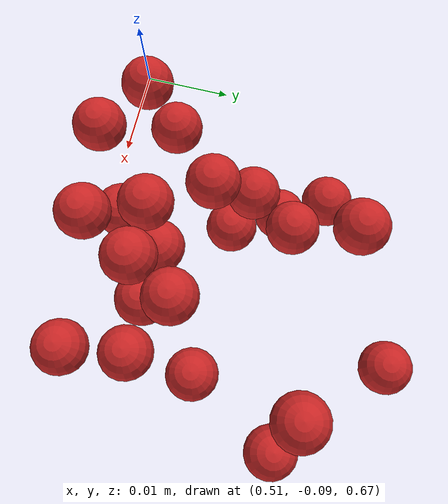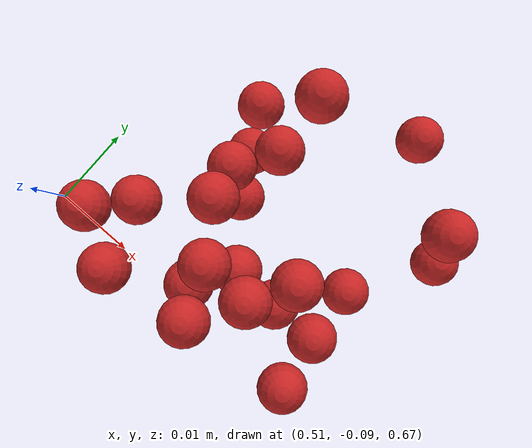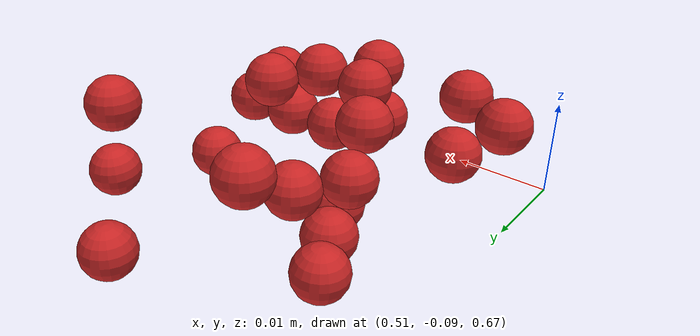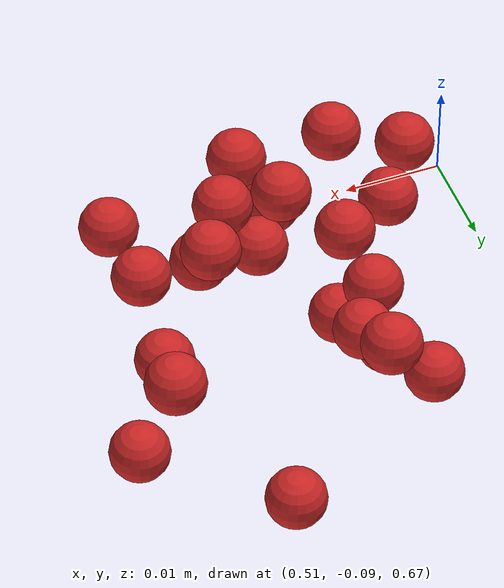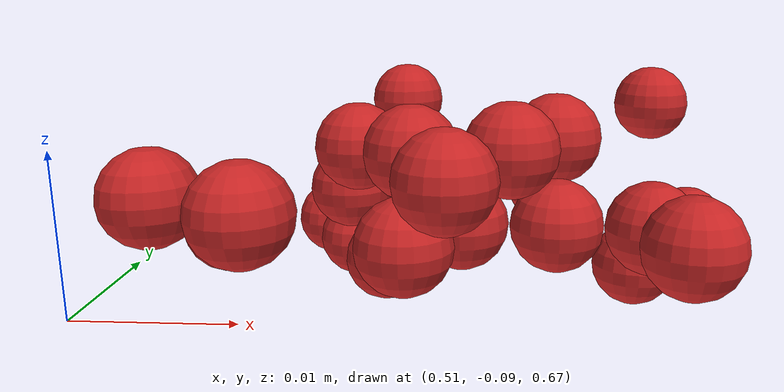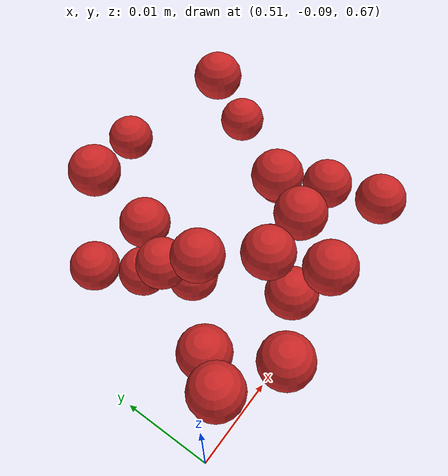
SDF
<sdf version="1.4">
 <world name="default">
  <model name="ground_plane">
   <static>1</static>
   <link name="link">
    <collision name="collision">
     <geometry><plane><normal>0 0 1</normal><size>100 100</size></plane></geometry>
     <surface><friction><ode><mu>100</mu><mu2>50</mu2></ode></friction></surface>
    </collision>
    <visual name="visual">
     <cast_shadows>0</cast_shadows>
     <geometry><plane><normal>0 0 1</normal><size>100 100</size></plane></geometry>
     <material>
      <script><uri>file://media/materials/scripts/gazebo.material</uri><name>Gazebo/Grey</name></script>
     </material>
    </visual>
    <velocity_decay><linear>0</linear><angular>0</angular></velocity_decay>
   </link>
  </model>
  <model name="sphere8">
   <pose>-0.011995 -0.038046 -0.064945 0.000812 -0.003027 0.000215</pose>
   <link name="link">
    <pose>0.54076 -0.036781 0.732288 0 -0 0</pose>
    <inertial>
     <mass>0.0000001</mass>
     <inertia><ixx>0.00004</ixx><ixy>0</ixy><ixz>0</ixz><iyy>0.00004</iyy><iyz>0</iyz><izz>0.00004</izz></inertia>
    </inertial>
    <collision name="collision">
     <surface>
      <contact><ode><kp>1e+10</kp><kd>1</kd></ode></contact>
      <friction><ode><mu>0.01</mu><mu2>0.01</mu2></ode></friction>
     </surface>
     <geometry><sphere><radius>0.003</radius></sphere></geometry>
    </collision>
    <visual name="visual">
     <geometry><sphere><radius>0.003</radius></sphere></geometry>
     <material>
      <script><uri>file://media/materials/scripts/gazebo.material</uri><name>Gazebo/Red</name></script>
     </material>
    </visual>
    <velocity_decay><linear>0</linear><angular>0</angular></velocity_decay>
   </link>
   <static>0</static>
  </model>
  <model name="sphere15">
   <pose>-0.014854 -0.034476 -0.067614 -0.013995 -0.006976 0.000594</pose>
   <link name="link">
    <pose>0.55876 -0.030781 0.732288 0 -0 0</pose>
    <inertial>
     <mass>0.0000001</mass>
     <inertia><ixx>0.00004</ixx><ixy>0</ixy><ixz>0</ixz><iyy>0.00004</iyy><iyz>0</iyz><izz>0.00004</izz></inertia>
    </inertial>
    <collision name="collision">
     <surface>
      <contact><ode><kp>1e+10</kp><kd>1</kd></ode></contact>
      <friction><ode><mu>0.01</mu><mu2>0.01</mu2></ode></friction>
     </surface>
     <geometry><sphere><radius>0.003</radius></sphere></geometry>
    </collision>
    <visual name="visual">
     <geometry><sphere><radius>0.003</radius></sphere></geometry>
     <material>
      <script><uri>file://media/materials/scripts/gazebo.material</uri><name>Gazebo/Red</name></script>
     </material>
    </visual>
    <velocity_decay><linear>0</linear><angular>0</angular></velocity_decay>
   </link>
   <static>0</static>
  </model>
  <model name="sphere19">
   <pose>-0.010585 -0.046733 -0.065967 -0.013053 -0.003186 -0.005735</pose>
   <link name="link">
    <pose>0.55876 -0.048781 0.738288 0 -0 0</pose>
    <inertial>
     <mass>0.0000001</mass>
     <inertia><ixx>0.00004</ixx><ixy>0</ixy><ixz>0</ixz><iyy>0.00004</iyy><iyz>0</iyz><izz>0.00004</izz></inertia>
    </inertial>
    <collision name="collision">
     <surface>
      <contact><ode><kp>1e+10</kp><kd>1</kd></ode></contact>
      <friction><ode><mu>0.01</mu><mu2>0.01</mu2></ode></friction>
     </surface>
     <geometry><sphere><radius>0.003</radius></sphere></geometry>
    </collision>
    <visual name="visual">
     <geometry><sphere><radius>0.003</radius></sphere></geometry>
     <material>
      <script><uri>file://media/materials/scripts/gazebo.material</uri><name>Gazebo/Red</name></script>
     </material>
    </visual>
    <velocity_decay><linear>0</linear><angular>0</angular></velocity_decay>
   </link>
   <static>0</static>
  </model>
  <model name="sphere42">
   <pose>-0.015761 -0.041156 -0.064336 0.000626 0.002089 -0.000679</pose>
   <link name="link">
    <pose>0.55276 -0.036781 0.744288 0 -0 0</pose>
    <inertial>
     <mass>0.0000001</mass>
     <inertia><ixx>0.00004</ixx><ixy>0</ixy><ixz>0</ixz><iyy>0.00004</iyy><iyz>0</iyz><izz>0.00004</izz></inertia>
    </inertial>
    <collision name="collision">
     <surface>
      <contact><ode><kp>1e+10</kp><kd>1</kd></ode></contact>
      <friction><ode><mu>0.01</mu><mu2>0.01</mu2></ode></friction>
     </surface>
     <geometry><sphere><radius>0.003</radius></sphere></geometry>
    </collision>
    <visual name="visual">
     <geometry><sphere><radius>0.003</radius></sphere></geometry>
     <material>
      <script><uri>file://media/materials/scripts/gazebo.material</uri><name>Gazebo/Red</name></script>
     </material>
    </visual>
    <velocity_decay><linear>0</linear><angular>0</angular></velocity_decay>
   </link>
   <static>0</static>
  </model>
  <model name="sphere47">
   <pose>-0.012548 -0.03429 -0.064661 -0.001338 0.001501 0.000788</pose>
   <link name="link">
    <pose>0.55876 -0.030781 0.744288 0 -0 0</pose>
    <inertial>
     <mass>0.0000001</mass>
     <inertia><ixx>0.00004</ixx><ixy>0</ixy><ixz>0</ixz><iyy>0.00004</iyy><iyz>0</iyz><izz>0.00004</izz></inertia>
    </inertial>
    <collision name="collision">
     <surface>
      <contact><ode><kp>1e+10</kp><kd>1</kd></ode></contact>
      <friction><ode><mu>0.01</mu><mu2>0.01</mu2></ode></friction>
     </surface>
     <geometry><sphere><radius>0.003</radius></sphere></geometry>
    </collision>
    <visual name="visual">
     <geometry><sphere><radius>0.003</radius></sphere></geometry>
     <material>
      <script><uri>file://media/materials/scripts/gazebo.material</uri><name>Gazebo/Red</name></script>
     </material>
    </visual>
    <velocity_decay><linear>0</linear><angular>0</angular></velocity_decay>
   </link>
   <static>0</static>
  </model>
  <model name="sphere49">
   <pose>-0.015658 -0.040966 -0.07213 -0.021245 0.018212 -0.00307</pose>
   <link name="link">
    <pose>0.54676 -0.048781 0.750288 0 -0 0</pose>
    <inertial>
     <mass>0.0000001</mass>
     <inertia><ixx>0.00004</ixx><ixy>0</ixy><ixz>0</ixz><iyy>0.00004</iyy><iyz>0</iyz><izz>0.00004</izz></inertia>
    </inertial>
    <collision name="collision">
     <surface>
      <contact><ode><kp>1e+10</kp><kd>1</kd></ode></contact>
      <friction><ode><mu>0.01</mu><mu2>0.01</mu2></ode></friction>
     </surface>
     <geometry><sphere><radius>0.003</radius></sphere></geometry>
    </collision>
    <visual name="visual">
     <geometry><sphere><radius>0.003</radius></sphere></geometry>
     <material>
      <script><uri>file://media/materials/scripts/gazebo.material</uri><name>Gazebo/Red</name></script>
     </material>
    </visual>
    <velocity_decay><linear>0</linear><angular>0</angular></velocity_decay>
   </link>
   <static>0</static>
  </model>
  <model name="sphere62">
   <pose>-0.017995 -0.034349 -0.091556 0.000148 -0.018681 0.000735</pose>
   <link name="link">
    <pose>0.55276 -0.030781 0.750288 0 -0 0</pose>
    <inertial>
     <mass>0.0000001</mass>
     <inertia><ixx>0.00004</ixx><ixy>0</ixy><ixz>0</ixz><iyy>0.00004</iyy><iyz>0</iyz><izz>0.00004</izz></inertia>
    </inertial>
    <collision name="collision">
     <surface>
      <contact><ode><kp>1e+10</kp><kd>1</kd></ode></contact>
      <friction><ode><mu>0.01</mu><mu2>0.01</mu2></ode></friction>
     </surface>
     <geometry><sphere><radius>0.003</radius></sphere></geometry>
    </collision>
    <visual name="visual">
     <geometry><sphere><radius>0.003</radius></sphere></geometry>
     <material>
      <script><uri>file://media/materials/scripts/gazebo.material</uri><name>Gazebo/Red</name></script>
     </material>
    </visual>
    <velocity_decay><linear>0</linear><angular>0</angular></velocity_decay>
   </link>
   <static>0</static>
  </model>
  <model name="sphere70">
   <pose>-0.010068 -0.037963 -0.081143 0.003171 0.002287 0.001258</pose>
   <link name="link">
    <pose>0.55276 -0.042781 0.756288 0 -0 0</pose>
    <inertial>
     <mass>0.0000001</mass>
     <inertia><ixx>0.00004</ixx><ixy>0</ixy><ixz>0</ixz><iyy>0.00004</iyy><iyz>0</iyz><izz>0.00004</izz></inertia>
    </inertial>
    <collision name="collision">
     <surface>
      <contact><ode><kp>1e+10</kp><kd>1</kd></ode></contact>
      <friction><ode><mu>0.01</mu><mu2>0.01</mu2></ode></friction>
     </surface>
     <geometry><sphere><radius>0.003</radius></sphere></geometry>
    </collision>
    <visual name="visual">
     <geometry><sphere><radius>0.003</radius></sphere></geometry>
     <material>
      <script><uri>file://media/materials/scripts/gazebo.material</uri><name>Gazebo/Red</name></script>
     </material>
    </visual>
    <velocity_decay><linear>0</linear><angular>0</angular></velocity_decay>
   </link>
   <static>0</static>
  </model>
  <model name="sphere81">
   <pose>-0.010707 -0.034104 -0.083601 0.000765 -0.000693 -0.000831</pose>
   <link name="link">
    <pose>0.54676 -0.048781 0.762288 0 -0 0</pose>
    <inertial>
     <mass>0.0000001</mass>
     <inertia><ixx>0.00004</ixx><ixy>0</ixy><ixz>0</ixz><iyy>0.00004</iyy><iyz>0</iyz><izz>0.00004</izz></inertia>
    </inertial>
    <collision name="collision">
     <surface>
      <contact><ode><kp>1e+10</kp><kd>1</kd></ode></contact>
      <friction><ode><mu>0.01</mu><mu2>0.01</mu2></ode></friction>
     </surface>
     <geometry><sphere><radius>0.003</radius></sphere></geometry>
    </collision>
    <visual name="visual">
     <geometry><sphere><radius>0.003</radius></sphere></geometry>
     <material>
      <script><uri>file://media/materials/scripts/gazebo.material</uri><name>Gazebo/Red</name></script>
     </material>
    </visual>
    <velocity_decay><linear>0</linear><angular>0</angular></velocity_decay>
   </link>
   <static>0</static>
  </model>
  <model name="sphere100">
   <pose>-0.017657 -0.031811 -0.099242 -0.003519 0.000511 0.003353</pose>
   <link name="link">
    <pose>0.54076 -0.042781 0.768288 0 -0 0</pose>
    <inertial>
     <mass>0.0000001</mass>
     <inertia><ixx>0.00004</ixx><ixy>0</ixy><ixz>0</ixz><iyy>0.00004</iyy><iyz>0</iyz><izz>0.00004</izz></inertia>
    </inertial>
    <collision name="collision">
     <surface>
      <contact><ode><kp>1e+10</kp><kd>1</kd></ode></contact>
      <friction><ode><mu>0.01</mu><mu2>0.01</mu2></ode></friction>
     </surface>
     <geometry><sphere><radius>0.003</radius></sphere></geometry>
    </collision>
    <visual name="visual">
     <geometry><sphere><radius>0.003</radius></sphere></geometry>
     <material>
      <script><uri>file://media/materials/scripts/gazebo.material</uri><name>Gazebo/Red</name></script>
     </material>
    </visual>
    <velocity_decay><linear>0</linear><angular>0</angular></velocity_decay>
   </link>
   <static>0</static>
  </model>
  <model name="sphere112">
   <pose>-0.012681 -0.039969 -0.107378 -0.007505 -0.01285 -0.00189</pose>
   <link name="link">
    <pose>0.54076 -0.048781 0.774288 0 -0 0</pose>
    <inertial>
     <mass>0.0000001</mass>
     <inertia><ixx>0.00004</ixx><ixy>0</ixy><ixz>0</ixz><iyy>0.00004</iyy><iyz>0</iyz><izz>0.00004</izz></inertia>
    </inertial>
    <collision name="collision">
     <surface>
      <contact><ode><kp>1e+10</kp><kd>1</kd></ode></contact>
      <friction><ode><mu>0.01</mu><mu2>0.01</mu2></ode></friction>
     </surface>
     <geometry><sphere><radius>0.003</radius></sphere></geometry>
    </collision>
    <visual name="visual">
     <geometry><sphere><radius>0.003</radius></sphere></geometry>
     <material>
      <script><uri>file://media/materials/scripts/gazebo.material</uri><name>Gazebo/Red</name></script>
     </material>
    </visual>
    <velocity_decay><linear>0</linear><angular>0</angular></velocity_decay>
   </link>
   <static>0</static>
  </model>
  <model name="sphere129">
   <pose>-0.01705 -0.037641 -0.106672 0.000768 -0.000592 -0.000549</pose>
   <link name="link">
    <pose>0.54676 -0.048781 0.780288 0 -0 0</pose>
    <inertial>
     <mass>0.0000001</mass>
     <inertia><ixx>0.00004</ixx><ixy>0</ixy><ixz>0</ixz><iyy>0.00004</iyy><iyz>0</iyz><izz>0.00004</izz></inertia>
    </inertial>
    <collision name="collision">
     <surface>
      <contact><ode><kp>1e+10</kp><kd>1</kd></ode></contact>
      <friction><ode><mu>0.01</mu><mu2>0.01</mu2></ode></friction>
     </surface>
     <geometry><sphere><radius>0.003</radius></sphere></geometry>
    </collision>
    <visual name="visual">
     <geometry><sphere><radius>0.003</radius></sphere></geometry>
     <material>
      <script><uri>file://media/materials/scripts/gazebo.material</uri><name>Gazebo/Red</name></script>
     </material>
    </visual>
    <velocity_decay><linear>0</linear><angular>0</angular></velocity_decay>
   </link>
   <static>0</static>
  </model>
  <model name="sphere135">
   <pose>-0.012944 -0.077597 -0.10897 -0.069233 0.00623 0.00201</pose>
   <link name="link">
    <pose>0.55876 -0.042781 0.780288 0 -0 0</pose>
    <inertial>
     <mass>0.0000001</mass>
     <inertia><ixx>0.00004</ixx><ixy>0</ixy><ixz>0</ixz><iyy>0.00004</iyy><iyz>0</iyz><izz>0.00004</izz></inertia>
    </inertial>
    <collision name="collision">
     <surface>
      <contact><ode><kp>1e+10</kp><kd>1</kd></ode></contact>
      <friction><ode><mu>0.01</mu><mu2>0.01</mu2></ode></friction>
     </surface>
     <geometry><sphere><radius>0.003</radius></sphere></geometry>
    </collision>
    <visual name="visual">
     <geometry><sphere><radius>0.003</radius></sphere></geometry>
     <material>
      <script><uri>file://media/materials/scripts/gazebo.material</uri><name>Gazebo/Red</name></script>
     </material>
    </visual>
    <velocity_decay><linear>0</linear><angular>0</angular></velocity_decay>
   </link>
   <static>0</static>
  </model>
  <model name="sphere136">
   <pose>-0.012955 -0.032014 -0.107087 -0.0018 -0.001194 -0.001629</pose>
   <link name="link">
    <pose>0.54076 -0.036781 0.780288 0 -0 0</pose>
    <inertial>
     <mass>0.0000001</mass>
     <inertia><ixx>0.00004</ixx><ixy>0</ixy><ixz>0</ixz><iyy>0.00004</iyy><iyz>0</iyz><izz>0.00004</izz></inertia>
    </inertial>
    <collision name="collision">
     <surface>
      <contact><ode><kp>1e+10</kp><kd>1</kd></ode></contact>
      <friction><ode><mu>0.01</mu><mu2>0.01</mu2></ode></friction>
     </surface>
     <geometry><sphere><radius>0.003</radius></sphere></geometry>
    </collision>
    <visual name="visual">
     <geometry><sphere><radius>0.003</radius></sphere></geometry>
     <material>
      <script><uri>file://media/materials/scripts/gazebo.material</uri><name>Gazebo/Red</name></script>
     </material>
    </visual>
    <velocity_decay><linear>0</linear><angular>0</angular></velocity_decay>
   </link>
   <static>0</static>
  </model>
  <model name="sphere149">
   <pose>-0.013646 -0.039378 -0.11291 9.5e-05 -0.000896 -4.4e-05</pose>
   <link name="link">
    <pose>0.54676 -0.042781 0.786288 0 -0 0</pose>
    <inertial>
     <mass>0.0000001</mass>
     <inertia><ixx>0.00004</ixx><ixy>0</ixy><ixz>0</ixz><iyy>0.00004</iyy><iyz>0</iyz><izz>0.00004</izz></inertia>
    </inertial>
    <collision name="collision">
     <surface>
      <contact><ode><kp>1e+10</kp><kd>1</kd></ode></contact>
      <friction><ode><mu>0.01</mu><mu2>0.01</mu2></ode></friction>
     </surface>
     <geometry><sphere><radius>0.003</radius></sphere></geometry>
    </collision>
    <visual name="visual">
     <geometry><sphere><radius>0.003</radius></sphere></geometry>
     <material>
      <script><uri>file://media/materials/scripts/gazebo.material</uri><name>Gazebo/Red</name></script>
     </material>
    </visual>
    <velocity_decay><linear>0</linear><angular>0</angular></velocity_decay>
   </link>
   <static>0</static>
  </model>
  <model name="sphere150">
   <pose>-0.015208 -0.038606 -0.111768 0.00149 0.001133 0.000324</pose>
   <link name="link">
    <pose>0.55276 -0.042781 0.786288 0 -0 0</pose>
    <inertial>
     <mass>0.0000001</mass>
     <inertia><ixx>0.00004</ixx><ixy>0</ixy><ixz>0</ixz><iyy>0.00004</iyy><iyz>0</iyz><izz>0.00004</izz></inertia>
    </inertial>
    <collision name="collision">
     <surface>
      <contact><ode><kp>1e+10</kp><kd>1</kd></ode></contact>
      <friction><ode><mu>0.01</mu><mu2>0.01</mu2></ode></friction>
     </surface>
     <geometry><sphere><radius>0.003</radius></sphere></geometry>
    </collision>
    <visual name="visual">
     <geometry><sphere><radius>0.003</radius></sphere></geometry>
     <material>
      <script><uri>file://media/materials/scripts/gazebo.material</uri><name>Gazebo/Red</name></script>
     </material>
    </visual>
    <velocity_decay><linear>0</linear><angular>0</angular></velocity_decay>
   </link>
   <static>0</static>
  </model>
  <model name="sphere152">
   <pose>-0.016783 -0.040512 -0.107608 0.001191 0.00139 0.000978</pose>
   <link name="link">
    <pose>0.54076 -0.036781 0.786288 0 -0 0</pose>
    <inertial>
     <mass>0.0000001</mass>
     <inertia><ixx>0.00004</ixx><ixy>0</ixy><ixz>0</ixz><iyy>0.00004</iyy><iyz>0</iyz><izz>0.00004</izz></inertia>
    </inertial>
    <collision name="collision">
     <surface>
      <contact><ode><kp>1e+10</kp><kd>1</kd></ode></contact>
      <friction><ode><mu>0.01</mu><mu2>0.01</mu2></ode></friction>
     </surface>
     <geometry><sphere><radius>0.003</radius></sphere></geometry>
    </collision>
    <visual name="visual">
     <geometry><sphere><radius>0.003</radius></sphere></geometry>
     <material>
      <script><uri>file://media/materials/scripts/gazebo.material</uri><name>Gazebo/Red</name></script>
     </material>
    </visual>
    <velocity_decay><linear>0</linear><angular>0</angular></velocity_decay>
   </link>
   <static>0</static>
  </model>
  <model name="sphere156">
   <pose>-0.012349 -0.033071 -0.108798 -0.002318 -0.00215 0.001089</pose>
   <link name="link">
    <pose>0.54076 -0.030781 0.786288 0 -0 0</pose>
    <inertial>
     <mass>0.0000001</mass>
     <inertia><ixx>0.00004</ixx><ixy>0</ixy><ixz>0</ixz><iyy>0.00004</iyy><iyz>0</iyz><izz>0.00004</izz></inertia>
    </inertial>
    <collision name="collision">
     <surface>
      <contact><ode><kp>1e+10</kp><kd>1</kd></ode></contact>
      <friction><ode><mu>0.01</mu><mu2>0.01</mu2></ode></friction>
     </surface>
     <geometry><sphere><radius>0.003</radius></sphere></geometry>
    </collision>
    <visual name="visual">
     <geometry><sphere><radius>0.003</radius></sphere></geometry>
     <material>
      <script><uri>file://media/materials/scripts/gazebo.material</uri><name>Gazebo/Red</name></script>
     </material>
    </visual>
    <velocity_decay><linear>0</linear><angular>0</angular></velocity_decay>
   </link>
   <static>0</static>
  </model>
  <model name="sphere160">
   <pose>-0.011547 -0.033935 -0.113289 0.002362 0.00015 0.001341</pose>
   <link name="link">
    <pose>0.54076 -0.048781 0.792288 0 -0 0</pose>
    <inertial>
     <mass>0.0000001</mass>
     <inertia><ixx>0.00004</ixx><ixy>0</ixy><ixz>0</ixz><iyy>0.00004</iyy><iyz>0</iyz><izz>0.00004</izz></inertia>
    </inertial>
    <collision name="collision">
     <surface>
      <contact><ode><kp>1e+10</kp><kd>1</kd></ode></contact>
      <friction><ode><mu>0.01</mu><mu2>0.01</mu2></ode></friction>
     </surface>
     <geometry><sphere><radius>0.003</radius></sphere></geometry>
    </collision>
    <visual name="visual">
     <geometry><sphere><radius>0.003</radius></sphere></geometry>
     <material>
      <script><uri>file://media/materials/scripts/gazebo.material</uri><name>Gazebo/Red</name></script>
     </material>
    </visual>
    <velocity_decay><linear>0</linear><angular>0</angular></velocity_decay>
   </link>
   <static>0</static>
  </model>
  <model name="sphere176">
   <pose>-0.012317 -0.056123 -0.131426 -0.02811 -0.016787 -0.010682</pose>
   <link name="link">
    <pose>0.54076 -0.048781 0.798288 0 -0 0</pose>
    <inertial>
     <mass>0.0000001</mass>
     <inertia><ixx>0.00004</ixx><ixy>0</ixy><ixz>0</ixz><iyy>0.00004</iyy><iyz>0</iyz><izz>0.00004</izz></inertia>
    </inertial>
    <collision name="collision">
     <surface>
      <contact><ode><kp>1e+10</kp><kd>1</kd></ode></contact>
      <friction><ode><mu>0.01</mu><mu2>0.01</mu2></ode></friction>
     </surface>
     <geometry><sphere><radius>0.003</radius></sphere></geometry>
    </collision>
    <visual name="visual">
     <geometry><sphere><radius>0.003</radius></sphere></geometry>
     <material>
      <script><uri>file://media/materials/scripts/gazebo.material</uri><name>Gazebo/Red</name></script>
     </material>
    </visual>
    <velocity_decay><linear>0</linear><angular>0</angular></velocity_decay>
   </link>
   <static>0</static>
  </model>
  <model name="sphere184">
   <pose>-0.016825 -0.038104 -0.124573 -0.001199 -0.000273 0.00093</pose>
   <link name="link">
    <pose>0.54076 -0.036781 0.798288 0 -0 0</pose>
    <inertial>
     <mass>0.0000001</mass>
     <inertia><ixx>0.00004</ixx><ixy>0</ixy><ixz>0</ixz><iyy>0.00004</iyy><iyz>0</iyz><izz>0.00004</izz></inertia>
    </inertial>
    <collision name="collision">
     <surface>
      <contact><ode><kp>1e+10</kp><kd>1</kd></ode></contact>
      <friction><ode><mu>0.01</mu><mu2>0.01</mu2></ode></friction>
     </surface>
     <geometry><sphere><radius>0.003</radius></sphere></geometry>
    </collision>
    <visual name="visual">
     <geometry><sphere><radius>0.003</radius></sphere></geometry>
     <material>
      <script><uri>file://media/materials/scripts/gazebo.material</uri><name>Gazebo/Red</name></script>
     </material>
    </visual>
    <velocity_decay><linear>0</linear><angular>0</angular></velocity_decay>
   </link>
   <static>0</static>
  </model>
  <model name="sphere196">
   <pose>-0.016742 -0.050746 -0.12927 0.000855 -0.003878 0.004463</pose>
   <link name="link">
    <pose>0.54076 -0.042781 0.804288 0 -0 0</pose>
    <inertial>
     <mass>0.0000001</mass>
     <inertia><ixx>0.00004</ixx><ixy>0</ixy><ixz>0</ixz><iyy>0.00004</iyy><iyz>0</iyz><izz>0.00004</izz></inertia>
    </inertial>
    <collision name="collision">
     <surface>
      <contact><ode><kp>1e+10</kp><kd>1</kd></ode></contact>
      <friction><ode><mu>0.01</mu><mu2>0.01</mu2></ode></friction>
     </surface>
     <geometry><sphere><radius>0.003</radius></sphere></geometry>
    </collision>
    <visual name="visual">
     <geometry><sphere><radius>0.003</radius></sphere></geometry>
     <material>
      <script><uri>file://media/materials/scripts/gazebo.material</uri><name>Gazebo/Red</name></script>
     </material>
    </visual>
    <velocity_decay><linear>0</linear><angular>0</angular></velocity_decay>
   </link>
   <static>0</static>
  </model>
  <model name="sphere209">
   <pose>-0.0164 -0.040955 -0.130716 0.000284 0.001826 -0.000174</pose>
   <link name="link">
    <pose>0.54676 -0.048781 0.810288 0 -0 0</pose>
    <inertial>
     <mass>0.0000001</mass>
     <inertia><ixx>0.00004</ixx><ixy>0</ixy><ixz>0</ixz><iyy>0.00004</iyy><iyz>0</iyz><izz>0.00004</izz></inertia>
    </inertial>
    <collision name="collision">
     <surface>
      <contact><ode><kp>1e+10</kp><kd>1</kd></ode></contact>
      <friction><ode><mu>0.01</mu><mu2>0.01</mu2></ode></friction>
     </surface>
     <geometry><sphere><radius>0.003</radius></sphere></geometry>
    </collision>
    <visual name="visual">
     <geometry><sphere><radius>0.003</radius></sphere></geometry>
     <material>
      <script><uri>file://media/materials/scripts/gazebo.material</uri><name>Gazebo/Red</name></script>
     </material>
    </visual>
    <velocity_decay><linear>0</linear><angular>0</angular></velocity_decay>
   </link>
   <static>0</static>
  </model>
 </world>
</sdf>
